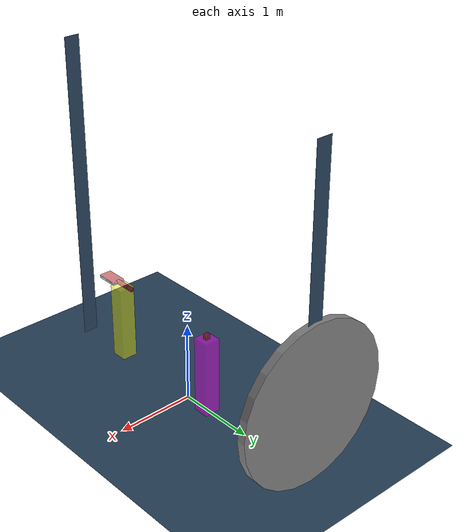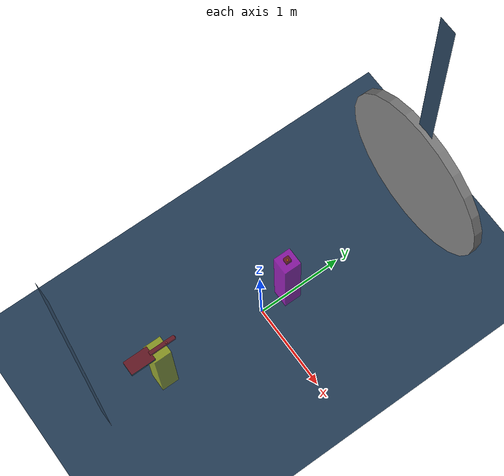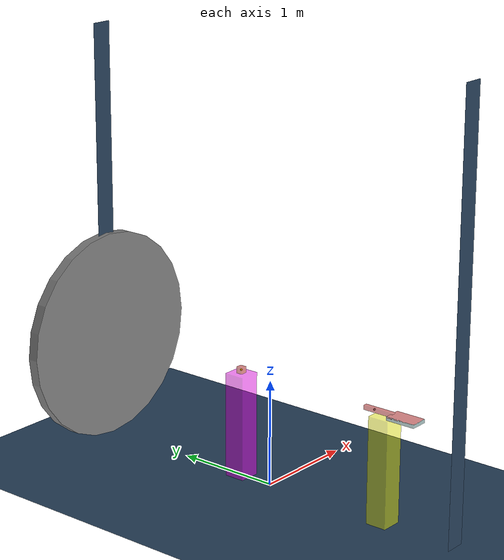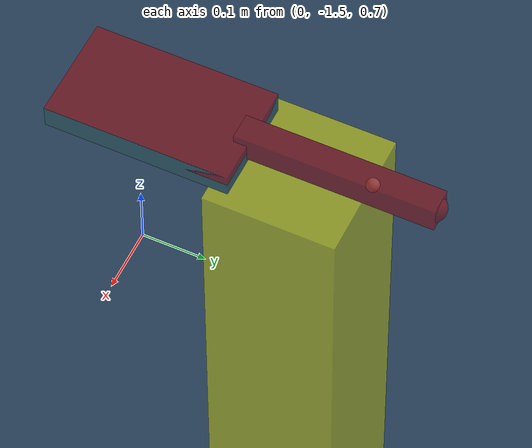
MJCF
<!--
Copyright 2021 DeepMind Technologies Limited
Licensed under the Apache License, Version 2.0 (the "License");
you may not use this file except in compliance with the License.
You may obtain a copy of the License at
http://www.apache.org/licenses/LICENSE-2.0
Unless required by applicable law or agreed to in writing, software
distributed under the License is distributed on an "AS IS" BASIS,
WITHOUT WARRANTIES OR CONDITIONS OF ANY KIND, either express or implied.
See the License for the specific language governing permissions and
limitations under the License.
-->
<mujoco model="Tennis serve">
  <visual>
    <map force="0.1" zfar="30"/>
    <rgba haze="0.15 0.25 0.35 1"/>
      <!--offwidth="2560" offheight="1440"-->
    <global
      elevation="20"
      azimuth="10"
      />
    <headlight ambient=".8 .8 .8" specular=".8 .8 .8"/>
  </visual>

  <default>
    <default class="racket">
      <geom solimp=".9 .99 .003" density="100" />
    </default>
    <default class="ball">
      <geom solimp=".9 .99 .003" density="100" />
    </default>
  </default>

  <statistic center="0 0 0.7"/>

  <asset>
    <texture type="skybox" builtin="gradient" rgb1=".3 .5 .7" rgb2="0 0 0"
      width="32" height="512"/>
    <texture name="grid" type="2d" builtin="checker" width="512" height="512"
      rgb1=".1 .2 .3" rgb2=".2 .3 .4"/>
    <material name="grid" texture="grid" texrepeat="1 1" texuniform="true"
      reflectance=".2"/>
    <texture name="obj" type="cube" builtin="flat" mark="cross" width="128"
      height="128" rgb1="0.8 0.6 0.4" rgb2="0.8 0.6 0.4" markrgb="1 1 1"
      random="0.01"/>
    <material name="obj" texture="obj" texuniform="true" rgba="0.8 0.6 .4 1"/>
  </asset>

  <worldbody>
    <geom name="floor" size="3 3 3" type="plane" material="grid"
      condim="3"/>
    <body name="wall" pos="0 0 0" xyaxes="1 0 0 0 0 1">
      <geom name="rwall2" pos = "0 2 -2" size=".1 2 .05" type="plane"
        material="grid" condim="3"/>
    </body>
    <body name="lwall" pos="0 0 0" xyaxes="-1 0 0 0 0 1">
      <geom name="lwall2" pos = "0 2 -2" size=".1 2 .05" type="plane"
        material="grid" condim="3"/>
    </body>
    <body name="ceil" pos="0 0 0" xyaxes="-1 0 0 0 1 0">
      <geom name="ceil2" pos = "0 0 -3" size=".1 2 .05" type="plane"
        material="grid" condim="3"/>
    </body>
    <camera name="forward" pos="9 0 0" xyaxes="0 1 0 0 0 1"/>

    <geom name="ballstand" size=".1 .1 .5" pos="0 .34 .5" type="box"
      material="obj" condim="3" rgba = "1 0 1 .5"/>

    <body name="ball" pos="0 0.34 1.03" childclass="ball">
      <freejoint name="ball_joint" align="true"/>
      <geom name="ball" size=".03 .03 .03" pos="0 0 0" type="box"
        material="obj" condim="3" friction="1 0.005 0.0001"
        rgba=".7 0 0 .5"/>
      <site name="ball_base" pos="0 0 -.03" size=".01" rgba=".7 .7 .2 0"/>
      <site name="ball" pos="0 0 0"/>
      <site name="ball_top" pos="0 0 0.03" rgba=".7 .7 .2 0"/>
      <body name="ball_core" pos="0 0 0">
        <geom name="ball_core" size=".01" pos="0 0 0" type="sphere"
          material="obj" condim="3" density="0" rgba="1 1 0 1"/>
      </body>
    </body>

    <geom name="racketstand" size=".1 .1 .5" pos="0 -1.25 .5" type="box"
      material="obj" condim="3" rgba="1 1 0 .5"/>

    <body name="racket" pos="0 -1.25 1.03" childclass="racket">
      <freejoint name="racket_joint" align="true"/>
      <geom name="racket_handle" type="box" size=".02 .02 .15" pos="0 .06 0"
        material="obj" condim="3" rgba=".7 0 0 .5"
        zaxis="0 1 0" friction="1 0.005 .0001" density="2"/>
      <site name="racket_handle" pos="0 .09 0" size=".05" rgba=".7 .7 .2 0"/>
      <site name="racket_handle_top" pos="0 .09 .02" size=".05" rgba=".7 .7 .2 0"/>
      <geom name="racket_handle_ball" type="sphere" size=".02" pos="0 .2 0"
        material="obj" condim="3" friction="1 0.005 0.0001" rgba=".7 0 0 .5"
        density="200" />
      <geom name="racket_net" type="box" size=".08 .14 .008" pos="0 -.21 0"
        material="obj" condim="3" friction="1 0.005 0.0001" rgba=".7 0 0 .5"
        density="20" contype="00" conaffinity="01" solref=".02 .4"/>
      <geom name="racket_net_back" type="box" size=".08 .14 .018" pos="0 -.21 -.01"
        material="obj" condim="3" friction="1 0.005 0.0001" rgba=".2 .4 .4 .5"
        density="0" contype="10" conaffinity="10" solref=".02 .4"/>
      <site name="racket" pos="0 0.11 0" size=".01"/>
      <!-- .03 vertical can do -->
      <body name="racket_node_1" pos="0 .14 0">
        <geom name="racket_node_1" size=".01" pos="0 0 0" type="sphere"
          material="obj" condim="3" density="0" rgba="1 1 0 .5"/>
      </body>
      <body name="racket_node_2" pos="0 .08 0">
        <geom name="racket_node_2" size=".01" pos="0 0 0" type="sphere"
          material="obj" condim="3" density="0" rgba="1 1 0 .5"/>
      </body>
    </body>

    <body name="target" pos="0 2 1.0">
      <geom name="target" type="cylinder" pos="0 0 0" size="1 .05"
        zaxis="0 1 0"/>
      <site name="bullseye" pos="0 -.05 0" size="0.06" rgba="1 1 1 0"/>
    </body>

  </worldbody>
</mujoco>
